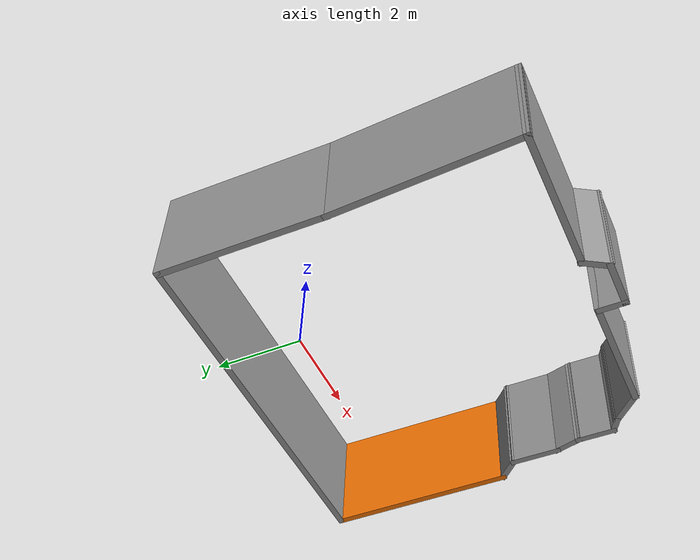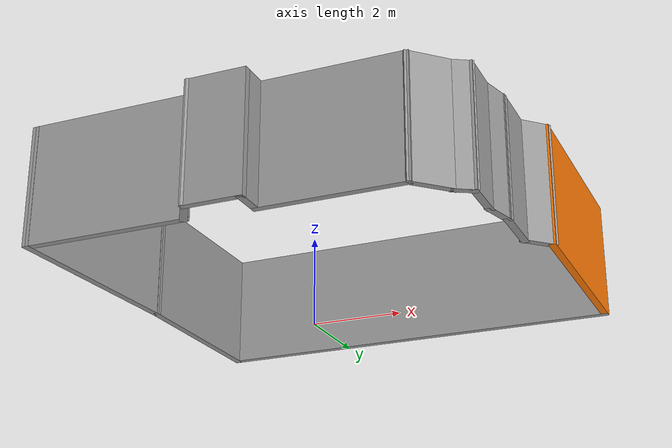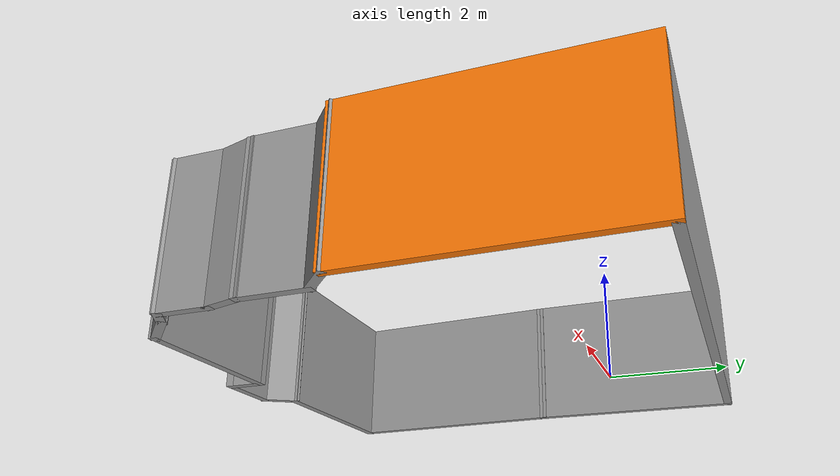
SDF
<?xml version='1.0'?>
<sdf version='1.7'>
  <model name='baha'>
    <pose>1.48171 -2.49366 0 0 -0 0</pose>
    <link name='Wall_1'>
      <collision name='Wall_1_Collision'>
        <geometry>
          <box>
            <size>4 0.15 2.5</size>
          </box>
        </geometry>
        <pose>0 0 1.25 0 -0 0</pose>
      </collision>
      <visual name='Wall_1_Visual'>
        <pose>0 0 1.25 0 -0 0</pose>
        <geometry>
          <box>
            <size>4 0.15 2.5</size>
          </box>
        </geometry>
        <material>
          <script>
            <uri>file://media/materials/scripts/gazebo.material</uri>
            <name>Gazebo/Grey</name>
          </script>
          <ambient>1 1 1 1</ambient>
        </material>
        <meta>
          <layer>0</layer>
        </meta>
      </visual>
      <pose>-4.3217 2.42866 0 0 -0 1.5708</pose>
    </link>
    <link name='Wall_10'>
      <collision name='Wall_10_Collision'>
        <geometry>
          <box>
            <size>3 0.15 2.5</size>
          </box>
        </geometry>
        <pose>0 0 1.25 0 -0 0</pose>
      </collision>
      <visual name='Wall_10_Visual'>
        <pose>0 0 1.25 0 -0 0</pose>
        <geometry>
          <box>
            <size>3 0.15 2.5</size>
          </box>
        </geometry>
        <material>
          <script>
            <uri>file://media/materials/scripts/gazebo.material</uri>
            <name>Gazebo/Grey</name>
          </script>
          <ambient>1 1 1 1</ambient>
        </material>
        <meta>
          <layer>0</layer>
        </meta>
      </visual>
      <pose>1.61959 -3.72621 0 0 -0 3.14159</pose>
    </link>
    <link name='Wall_11'>
      <collision name='Wall_11_Collision'>
        <geometry>
          <box>
            <size>0.75 0.15 2.5</size>
          </box>
        </geometry>
        <pose>0 0 1.25 0 -0 0</pose>
      </collision>
      <visual name='Wall_11_Visual'>
        <pose>0 0 1.25 0 -0 0</pose>
        <geometry>
          <box>
            <size>0.75 0.15 2.5</size>
          </box>
        </geometry>
        <material>
          <script>
            <uri>file://media/materials/scripts/gazebo.material</uri>
            <name>Gazebo/Grey</name>
          </script>
          <ambient>1 1 1 1</ambient>
        </material>
        <meta>
          <layer>0</layer>
        </meta>
      </visual>
      <pose>0.19459 -4.0262 0 0 -0 -1.5708</pose>
    </link>
    <link name='Wall_12'>
      <collision name='Wall_12_Collision'>
        <geometry>
          <box>
            <size>1.25 0.15 2.5</size>
          </box>
        </geometry>
        <pose>0 0 1.25 0 -0 0</pose>
      </collision>
      <visual name='Wall_12_Visual'>
        <pose>0 0 1.25 0 -0 0</pose>
        <geometry>
          <box>
            <size>1.25 0.15 2.5</size>
          </box>
        </geometry>
        <material>
          <script>
            <uri>file://media/materials/scripts/gazebo.material</uri>
            <name>Gazebo/Grey</name>
          </script>
          <ambient>1 1 1 1</ambient>
        </material>
        <meta>
          <layer>0</layer>
        </meta>
      </visual>
      <pose>-0.35541 -4.3262 0 0 -0 3.14159</pose>
    </link>
    <link name='Wall_13'>
      <collision name='Wall_13_Collision'>
        <geometry>
          <box>
            <size>0.75 0.15 2.5</size>
          </box>
        </geometry>
        <pose>0 0 1.25 0 -0 0</pose>
      </collision>
      <visual name='Wall_13_Visual'>
        <pose>0 0 1.25 0 -0 0</pose>
        <geometry>
          <box>
            <size>0.75 0.15 2.5</size>
          </box>
        </geometry>
        <material>
          <script>
            <uri>file://media/materials/scripts/gazebo.material</uri>
            <name>Gazebo/Grey</name>
          </script>
          <ambient>1 1 1 1</ambient>
        </material>
        <meta>
          <layer>0</layer>
        </meta>
      </visual>
      <pose>-1.05541 -4.0664 0 0 -0 2.0944</pose>
    </link>
    <link name='Wall_14'>
      <collision name='Wall_14_Collision'>
        <geometry>
          <box>
            <size>3.5 0.15 2.5</size>
          </box>
        </geometry>
        <pose>0 0 1.25 0 -0 0</pose>
      </collision>
      <visual name='Wall_14_Visual'>
        <pose>0 0 1.25 0 -0 0</pose>
        <geometry>
          <box>
            <size>3.5 0.15 2.5</size>
          </box>
        </geometry>
        <material>
          <script>
            <uri>file://media/materials/scripts/gazebo.material</uri>
            <name>Gazebo/Grey</name>
          </script>
          <ambient>1 1 1 1</ambient>
        </material>
        <meta>
          <layer>0</layer>
        </meta>
      </visual>
      <pose>-2.88041 -3.80659 0 0 -0 3.14159</pose>
    </link>
    <link name='Wall_15'>
      <collision name='Wall_15_Collision'>
        <geometry>
          <box>
            <size>4.46658 0.15 2.5</size>
          </box>
        </geometry>
        <pose>0 0 1.25 0 -0 0</pose>
      </collision>
      <visual name='Wall_15_Visual'>
        <pose>0 0 1.25 0 -0 0</pose>
        <geometry>
          <box>
            <size>4.46658 0.15 2.5</size>
          </box>
        </geometry>
        <material>
          <script>
            <uri>file://media/materials/scripts/gazebo.material</uri>
            <name>Gazebo/Grey</name>
          </script>
          <ambient>1 1 1 1</ambient>
        </material>
        <meta>
          <layer>0</layer>
        </meta>
      </visual>
      <pose>-4.43856 -1.65147 0 0 -0 1.51663</pose>
    </link>
    <link name='Wall_2'>
      <collision name='Wall_2_Collision'>
        <geometry>
          <box>
            <size>9 0.15 2.5</size>
          </box>
        </geometry>
        <pose>0 0 1.25 0 -0 0</pose>
      </collision>
      <visual name='Wall_2_Visual'>
        <pose>0 0 1.25 0 -0 0</pose>
        <geometry>
          <box>
            <size>9 0.15 2.5</size>
          </box>
        </geometry>
        <material>
          <script>
            <uri>file://media/materials/scripts/gazebo.material</uri>
            <name>Gazebo/Grey</name>
          </script>
          <ambient>1 1 1 1</ambient>
        </material>
        <meta>
          <layer>0</layer>
        </meta>
      </visual>
      <pose>0.103295 4.35366 0 0 -0 0</pose>
    </link>
    <link name='Wall_3'>
      <collision name='Wall_3_Collision'>
        <geometry>
          <box>
            <size>4.5 0.15 2.5</size>
          </box>
        </geometry>
        <pose>0 0 1.25 0 -0 0</pose>
      </collision>
      <visual name='Wall_3_Visual'>
        <pose>0 0 1.25 0 -0 0</pose>
        <geometry>
          <box>
            <size>4.5 0.15 2.5</size>
          </box>
        </geometry>
        <material>
          <script>
            <uri>file://media/materials/scripts/gazebo.material</uri>
            <name>Gazebo/Grey</name>
          </script>
          <ambient>0.996078 0.47451 0.0196078 1</ambient>
        </material>
        <meta>
          <layer>0</layer>
        </meta>
      </visual>
      <pose>4.52829 2.17866 0 0 -0 -1.5708</pose>
    </link>
    <link name='Wall_4'>
      <collision name='Wall_4_Collision'>
        <geometry>
          <box>
            <size>0.75 0.15 2.5</size>
          </box>
        </geometry>
        <pose>0 0 1.25 0 -0 0</pose>
      </collision>
      <visual name='Wall_4_Visual'>
        <pose>0 0 1.25 0 -0 0</pose>
        <geometry>
          <box>
            <size>0.75 0.15 2.5</size>
          </box>
        </geometry>
        <material>
          <script>
            <uri>file://media/materials/scripts/gazebo.material</uri>
            <name>Gazebo/Grey</name>
          </script>
          <ambient>1 1 1 1</ambient>
        </material>
        <meta>
          <layer>0</layer>
        </meta>
      </visual>
      <pose>4.31616 -0.208476 0 0 -0 -2.35619</pose>
    </link>
    <link name='Wall_5'>
      <collision name='Wall_5_Collision'>
        <geometry>
          <box>
            <size>1.25 0.15 2.5</size>
          </box>
        </geometry>
        <pose>0 0 1.25 0 -0 0</pose>
      </collision>
      <visual name='Wall_5_Visual'>
        <pose>0 0 1.25 0 -0 0</pose>
        <geometry>
          <box>
            <size>1.25 0.15 2.5</size>
          </box>
        </geometry>
        <material>
          <script>
            <uri>file://media/materials/scripts/gazebo.material</uri>
            <name>Gazebo/Grey</name>
          </script>
          <ambient>1 1 1 1</ambient>
        </material>
        <meta>
          <layer>0</layer>
        </meta>
      </visual>
      <pose>4.10403 -0.970608 0 0 -0 -1.5708</pose>
    </link>
    <link name='Wall_6'>
      <collision name='Wall_6_Collision'>
        <geometry>
          <box>
            <size>0.75 0.15 2.5</size>
          </box>
        </geometry>
        <pose>0 0 1.25 0 -0 0</pose>
      </collision>
      <visual name='Wall_6_Visual'>
        <pose>0 0 1.25 0 -0 0</pose>
        <geometry>
          <box>
            <size>0.75 0.15 2.5</size>
          </box>
        </geometry>
        <material>
          <script>
            <uri>file://media/materials/scripts/gazebo.material</uri>
            <name>Gazebo/Grey</name>
          </script>
          <ambient>1 1 1 1</ambient>
        </material>
        <meta>
          <layer>0</layer>
        </meta>
      </visual>
      <pose>4.02639 -1.81039 0 0 -0 -1.8326</pose>
    </link>
    <link name='Wall_7'>
      <collision name='Wall_7_Collision'>
        <geometry>
          <box>
            <size>1 0.15 2.5</size>
          </box>
        </geometry>
        <pose>0 0 1.25 0 -0 0</pose>
      </collision>
      <visual name='Wall_7_Visual'>
        <pose>0 0 1.25 0 -0 0</pose>
        <geometry>
          <box>
            <size>1 0.15 2.5</size>
          </box>
        </geometry>
        <material>
          <script>
            <uri>file://media/materials/scripts/gazebo.material</uri>
            <name>Gazebo/Grey</name>
          </script>
          <ambient>1 1 1 1</ambient>
        </material>
        <meta>
          <layer>0</layer>
        </meta>
      </visual>
      <pose>3.94874 -2.52516 0 0 -0 -1.5708</pose>
    </link>
    <link name='Wall_8'>
      <collision name='Wall_8_Collision'>
        <geometry>
          <box>
            <size>0.5 0.15 2.5</size>
          </box>
        </geometry>
        <pose>0 0 1.25 0 -0 0</pose>
      </collision>
      <visual name='Wall_8_Visual'>
        <pose>0 0 1.25 0 -0 0</pose>
        <geometry>
          <box>
            <size>0.5 0.15 2.5</size>
          </box>
        </geometry>
        <material>
          <script>
            <uri>file://media/materials/scripts/gazebo.material</uri>
            <name>Gazebo/Grey</name>
          </script>
          <ambient>1 1 1 1</ambient>
        </material>
        <meta>
          <layer>0</layer>
        </meta>
      </visual>
      <pose>3.79718 -3.03766 0 0 -0 -2.61799</pose>
    </link>
    <link name='Wall_9'>
      <collision name='Wall_9_Collision'>
        <geometry>
          <box>
            <size>1 0.15 2.5</size>
          </box>
        </geometry>
        <pose>0 0 1.25 0 -0 0</pose>
      </collision>
      <visual name='Wall_9_Visual'>
        <pose>0 0 1.25 0 -0 0</pose>
        <geometry>
          <box>
            <size>1 0.15 2.5</size>
          </box>
        </geometry>
        <material>
          <script>
            <uri>file://media/materials/scripts/gazebo.material</uri>
            <name>Gazebo/Grey</name>
          </script>
          <ambient>1 1 1 1</ambient>
        </material>
        <meta>
          <layer>0</layer>
        </meta>
      </visual>
      <pose>3.34511 -3.42568 0 0 -0 -2.35619</pose>
    </link>
    <static>1</static>
  </model>
</sdf>
